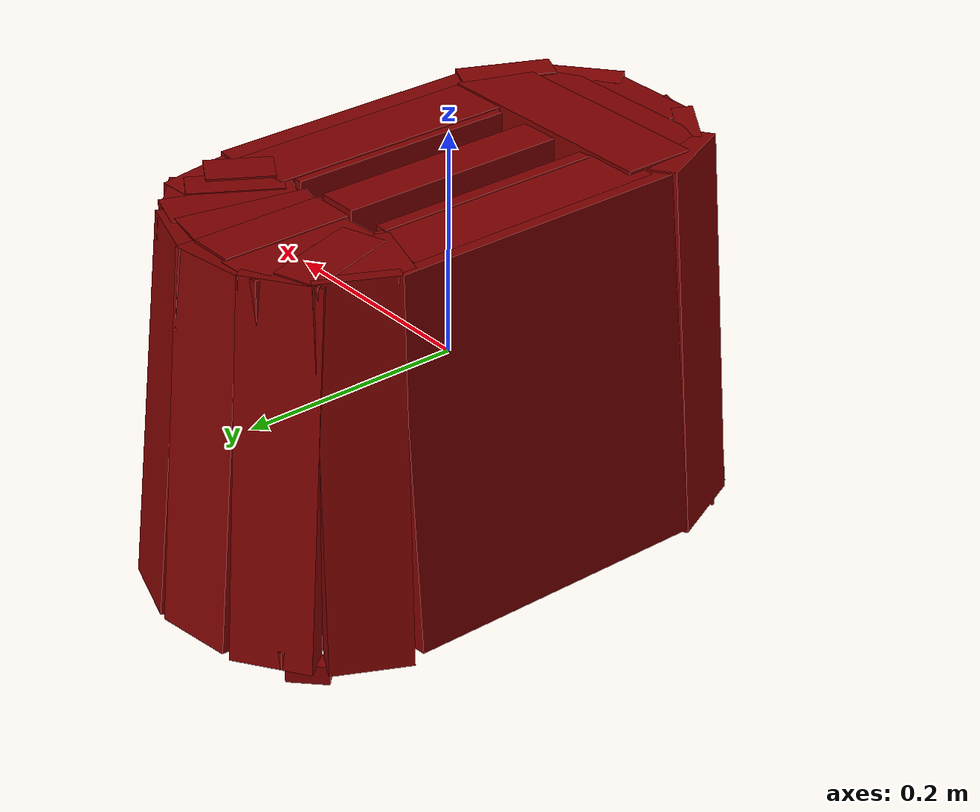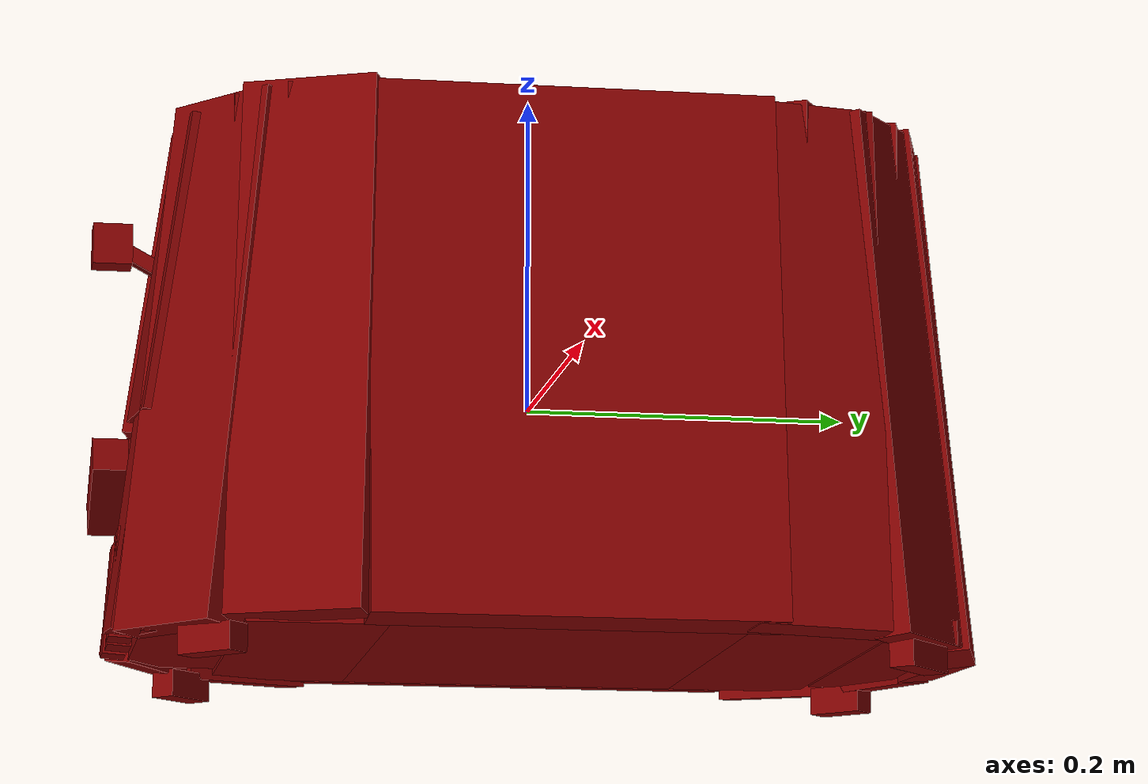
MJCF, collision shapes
<?xml version='1.0' encoding='UTF-8'?>
<mujoco model="model">
  <option timestep="0.002" gravity="0.0 0.0 -9.81"/>
  <compiler angle="radian"/>
  <asset>
    <mesh file="visuals/button_cancel.obj" name="button_cancel_vis"/>
    <mesh file="visuals/knob_doneness.obj" name="knob_doneness_vis"/>
    <mesh file="visuals/lever.obj" name="lever_vis"/>
    <mesh file="visuals/Body001.obj" name="Body001_vis"/>
    <texture file="visuals/T_BC001.png" name="Body001_material" type="2d"/>
    <material name="Body001_material" rgba="1 1 1 1.0" texture="Body001_material" shininess="0.141421377658844" specular="0.3103448502657381"/>
    <texture file="visuals/T_BC001.png" name="button_cancel_material" type="2d"/>
    <material name="button_cancel_material" rgba="1 1 1 1.0" texture="button_cancel_material" shininess="0.141421377658844" specular="0.3103448502657381"/>
    <texture file="visuals/T_BC001.png" name="knob_doneness_material" type="2d"/>
    <material name="knob_doneness_material" rgba="1 1 1 1.0" texture="knob_doneness_material" shininess="0.141421377658844" specular="0.3103448502657381"/>
    <texture file="visuals/T_BC001.png" name="lever_material" type="2d"/>
    <material name="lever_material" rgba="1 1 1 1.0" texture="lever_material" shininess="0.141421377658844" specular="0.3103448502657381"/>
  </asset>
  <default>
    <default class="visual">
      <geom conaffinity="0" contype="0" group="1" type="mesh"/>
    </default>
    <default class="collision">
      <geom group="0" rgba="0.5 0 0 0.5" density="1.0" solref="0.004 1" solimp="0.998 0.998 0.001"/>
    </default>
    <default class="spawn">
      <geom group="0" rgba="1 1 1 0.5" contype="0" conaffinity="0"/>
      <site group="0" rgba="1 1 1 0.5"/>
    </default>
    <default class="region">
      <geom group="1" conaffinity="0" contype="0" rgba="0 1 0 0" mass="0"/>
    </default>
  </default>
  <worldbody>
    <body>
      <body name="object">
        <geom mesh="Body001_vis" type="mesh" solimp="0.998 0.998 0.001" solref="0.001 1" friction="0.95 0.3 0.1" class="visual" material="Body001_material"/>
        <geom type="box" pos="-0.12839209 0.00789733 0.00909332" size="0.14144612848758698 0.01274540089070797 0.16335052251815796" quat="0.7064355611801147 -0.030804580077528954 0.030804496258497238 -0.7064353823661804" class="collision"/>
        <geom type="box" pos="0.12582500 0.00789736 0.00957425" size="0.12422096729278564 0.015895145013928413 0.1643896996974945" quat="0.7064338326454163 0.03084356151521206 -0.03084355592727661 -0.7064337134361267" class="collision"/>
        <geom type="box" pos="0.00011970 0.00789735 0.08630466" size="0.01845981739461422 0.10339897125959396 0.08628589659929276" quat="1.0 0.0 0.0 0.0" class="collision"/>
        <geom type="box" pos="-0.00052364 0.00635268 -0.14747350" size="0.12363019585609436 0.10683106631040573 0.007478775456547737" quat="1.0 0.0 0.0 0.0" class="collision"/>
        <geom type="box" pos="-0.05589509 0.00789734 0.08655936" size="0.005722363479435444 0.10339897871017456 0.0865406021475792" quat="1.0 0.0 0.0 0.0" class="collision"/>
        <geom type="box" pos="0.05375786 0.00789736 0.08591124" size="0.005722363479435444 0.10339897871017456 0.08589247614145279" quat="1.0 0.0 0.0 0.0" class="collision"/>
        <geom type="box" pos="0.08441834 0.00492108 0.14748457" size="0.029066720977425575 0.1197349950671196 0.025846406817436218" quat="1.0 0.0 0.0 0.0" class="collision"/>
        <geom type="box" pos="-0.00052361 -0.14244482 -0.14747350" size="0.1236310824751854 0.04326910525560379 0.007478646468371153" quat="1.0 0.0 0.0 0.0" class="collision"/>
        <geom type="box" pos="-0.00052367 0.15569738 -0.14747350" size="0.12363123893737793 0.04326910525560379 0.007478662300854921" quat="1.0 0.0 0.0 0.0" class="collision"/>
        <geom type="box" pos="-0.00052368 0.22390929 -0.14747350" size="0.09864763170480728 0.023213988170027733 0.007478990592062473" quat="1.0 0.0 0.0 0.0" class="collision"/>
        <geom type="box" pos="-0.00052359 -0.21499221 -0.14747350" size="0.07698934525251389 0.027825381606817245 0.0074788425117731094" quat="1.0 0.0 0.0 0.0" class="collision"/>
        <geom type="box" pos="-0.00159198 0.00940109 0.00482604" size="0.059575051069259644 0.1183314248919487 0.0005297267343848944" quat="1.0 0.0 0.0 0.0" class="collision"/>
        <geom type="box" pos="0.12333384 0.15298110 0.00795435" size="0.04173025116324425 0.011884286068379879 0.16376978158950806" quat="0.7600297927856445 0.028310716152191162 -0.03318355977535248 -0.6484227180480957" class="collision"/>
        <geom type="box" pos="0.09811267 0.21028277 0.00674540" size="0.03452734649181366 0.011884287931025028 0.1636912077665329" quat="0.9342952370643616 0.040630511939525604 -0.019244840368628502 -0.35365405678749084" class="collision"/>
        <geom type="box" pos="0.04697333 0.24245347 0.00687522" size="0.03452734649181366 0.011884287931025028 0.16505186259746552" quat="0.9861531853675842 0.04596418887376785 -0.010331111960113049 -0.15900461375713348" class="collision"/>
        <geom type="box" pos="-0.01588949 0.24893260 0.00729002" size="0.03452735021710396 0.011884287931025028 0.16470132768154144" quat="0.9965984225273132 0.04677310585975647 0.0004663928702939302 0.06784994900226593" class="collision"/>
        <geom type="box" pos="-0.07701792 0.22706197 0.00689822" size="0.03452734649181366 0.011884286068379879 0.16534389555454254" quat="0.9517301321029663 0.05032274127006531 0.006126889027655125 0.30272069573402405" class="collision"/>
        <geom type="box" pos="-0.11767361 0.17865041 0.00720534" size="0.03452734649181366 0.011884287931025028 0.16637316346168518" quat="0.8476083874702454 0.04295797646045685 0.026764579117298126 0.5282028913497925" class="collision"/>
        <geom type="box" pos="0.11917782 -0.15170936 0.01133909" size="0.04173024743795395 0.011884286068379879 0.16509374976158142" quat="0.5522377490997314 0.029308753088116646 -0.037714868783950806 -0.8323172926902771" class="collision"/>
        <geom type="box" pos="0.07809885 -0.20889115 0.00890918" size="0.04173025116324425 0.010432533919811249 0.16503295302391052" quat="0.3188709020614624 0.011297330260276794 -0.05592277646064758 -0.9460794925689697" class="collision"/>
        <geom type="box" pos="-0.07508872 -0.21264949 0.00829758" size="0.034751467406749725 0.009053592570126057 0.16551105678081512" quat="0.30279412865638733 0.0040574343875050545 0.053809989243745804 0.9515270590782166" class="collision"/>
        <geom type="box" pos="-0.11484302 -0.16354251 0.00808155" size="0.04173025116324425 0.011884286068379879 0.16576552391052246" quat="0.537534773349762 0.027018805965781212 0.03096226043999195 0.8422396779060364" class="collision"/>
        <geom type="box" pos="-0.02375131 -0.25128478 -0.12305498" size="0.01302685122936964 0.007193822413682938 0.033476803451776505" quat="0.999358594417572 -0.03437207639217377 0.010040899738669395 -0.00034534247242845595" class="collision"/>
        <geom type="box" pos="0.03623589 -0.22781441 0.07465361" size="0.025410937145352364 0.005940437316894531 0.09384605288505554" quat="0.9952822923660278 -0.07028617709875107 0.004711255431175232 0.06671416014432907" class="collision"/>
        <geom type="box" pos="-0.03526556 -0.22593828 0.07551196" size="0.025410933420062065 0.005940437316894531 0.09635770320892334" quat="0.9888200759887695 -0.069829560816288 -0.009281068108975887 -0.13142527639865875" class="collision"/>
        <geom type="box" pos="-0.04518352 -0.24568242 -0.08653834" size="0.010348370298743248 0.00594043405726552 0.06792284548282623" quat="0.9895538091659546 -0.05383039265871048 0.012083004228770733 -0.13318996131420135" class="collision"/>
        <geom type="box" pos="0.04543179 -0.24779661 -0.08608830" size="0.010348370298743248 0.005940435919910669 0.06673044711351395" quat="0.994620144367218 -0.06181461736559868 -0.013686208054423332 0.08199001103639603" class="collision"/>
        <geom type="box" pos="-0.00405861 0.17586805 0.14745433" size="0.020532969385385513 0.0576057992875576 0.025816163048148155" quat="1.0 0.0 0.0 0.0" class="collision"/>
        <geom type="box" pos="-0.08600640 0.00492108 0.14678000" size="0.029067037627100945 0.11973679810762405 0.025141829624772072" quat="1.0 0.0 0.0 0.0" class="collision"/>
        <geom type="box" pos="0.02580316 0.17463064 0.14701626" size="0.020533081144094467 0.05546017736196518 0.025378085672855377" quat="0.99519282579422 0.0 -0.0 -0.09793465584516525" class="collision"/>
        <geom type="box" pos="0.05440508 0.17284821 0.14690260" size="0.020533081144094467 0.05365860462188721 0.025264432653784752" quat="0.985664427280426 0.0 -0.0 -0.16871750354766846" class="collision"/>
        <geom type="box" pos="0.07746127 0.15380196 0.14736543" size="0.015054473653435707 0.03940611332654953 0.025727270171046257" quat="0.9634147882461548 0.0 -0.0 -0.2680148482322693" class="collision"/>
        <geom type="box" pos="0.09362758 0.13767712 0.14818598" size="0.017706094309687614 0.02816912531852722 0.026547815650701523" quat="0.9634147882461548 0.0 -0.0 -0.2680148482322693" class="collision"/>
        <geom type="box" pos="-0.04166391 0.17837507 0.14681840" size="0.020533081144094467 0.0576057992875576 0.025180231779813766" quat="0.9997580647468567 0.0 0.0 0.021995650604367256" class="collision"/>
        <geom type="box" pos="-0.06914723 0.16909322 0.14736542" size="0.020533081144094467 0.04429369792342186 0.025727255269885063" quat="0.9881181120872498 0.0 0.0 0.15369655191898346" class="collision"/>
        <geom type="box" pos="-0.08559208 0.14887503 0.14709192" size="0.030398856848478317 0.032412976026535034 0.025453763082623482" quat="0.8110179305076599 0.0 0.0 0.5850213170051575" class="collision"/>
        <geom type="box" pos="0.00281777 -0.13142104 0.14825095" size="0.10841242223978043 0.03248751536011696 0.026612786576151848" quat="1.0 0.0 0.0 0.0" class="collision"/>
        <geom type="box" pos="-0.00035795 -0.20149824 0.14689374" size="0.047777652740478516 0.02039469964802265 0.02525557205080986" quat="1.0 0.0 0.0 0.0" class="collision"/>
        <geom type="box" pos="-0.00302598 -0.17204057 0.14708586" size="0.09098364412784576 0.021839411929249763 0.025447696447372437" quat="1.0 0.0 0.0 0.0" class="collision"/>
        <geom type="box" pos="0.03048181 -0.25077319 -0.12084855" size="0.01302685122936964 0.007193822413682938 0.033476803451776505" quat="0.9994068145751953 -0.034373484551906586 0.0021147695370018482 -7.273506344063208e-05" class="collision"/>
        <geom type="box" pos="0.00329789 -0.25077435 -0.13591110" size="0.013768055476248264 0.007193821016699076 0.019472084939479828" quat="0.9994068145751953 -0.034373484551906586 0.0021147695370018482 -7.273506344063208e-05" class="collision"/>
        <geom type="box" pos="-0.10197954 -0.20589033 -0.16333322" size="0.00821390375494957 0.0178651325404644 0.008573487401008606" quat="0.9225467443466187 0.0 0.0 0.38588541746139526" class="collision"/>
        <geom type="box" pos="0.10498157 -0.20311105 -0.16333322" size="0.008213902823626995 0.019728634506464005 0.008573487401008606" quat="0.9253305792808533 0.0 -0.0 -0.37916135787963867" class="collision"/>
        <geom type="box" pos="-0.10261019 0.22309904 -0.16333322" size="0.00821390375494957 0.0178651325404644 0.008573487401008606" quat="0.9230363965034485 0.0 -0.0 -0.38471266627311707" class="collision"/>
        <geom type="box" pos="0.10355650 0.22131294 -0.16333322" size="0.008213902823626995 0.02138938196003437 0.008573487401008606" quat="0.39746493101119995 0.0 -0.0 -0.9176173806190491" class="collision"/>
        <body name="button_cancel">
          <joint axis="0.0 1.0 0.0" pos="0.00378405 -0.25243592 -0.10674371" limited="true" name="button_cancel_joint" range="0.0 0.003" type="slide" damping="1" frictionloss="1" armature=".01" stiffness="0.05"/>
          <geom mesh="button_cancel_vis" type="mesh" solimp="0.998 0.998 0.001" solref="0.001 1" friction="0.95 0.3 0.1" class="visual" material="button_cancel_material"/>
          <geom class="collision" type="box" pos="0.00377033 -0.25328869 -0.10690443" size="0.011674778535962105 0.0019006102811545134 0.0063023255206644535" quat="1.0 0.0 0.0 0.0" name="button_cancel_main"/>
        </body>
        <body name="knob_doneness">
          <joint axis="0.0 1.0 0.0" pos="0.00076377 -0.25170308 -0.05679606" limited="true" name="knob_doneness_joint" range="0.0 4.153883619746504" type="hinge" damping="0.05" frictionloss="0.1" armature="0.001"/>
          <geom mesh="knob_doneness_vis" type="mesh" solimp="0.998 0.998 0.001" solref="0.001 1" friction="0.95 0.3 0.1" class="visual" material="knob_doneness_material"/>
          <geom type="cylinder" pos="0.00081063 -0.24853866 -0.05675789" size="0.030964963138103485 0.0012452210066840053" quat="0.5000000596046448 -0.5 -0.5 -0.4999999701976776" class="collision" density="0.001"/>
          <geom class="collision" type="box" pos="0.00059257 -0.26034275 -0.05596535" size="0.029718758538365364 0.010985721834003925 0.012968876399099827" quat="0.9604214429855347 0.0 -0.27855104207992554 0.0" name="knob_doneness_main" density="0.001"/>
        </body>
        <body name="lever">
          <joint axis="0.0 0.0 -1.0" pos="0.00063864 -0.24778864 0.09120349" limited="true" name="lever_joint" range="0.0 0.059000000000000004" type="slide" damping="1" frictionloss="1" armature=".01" stiffness="2" springref="-0.5"/>
          <geom class="region" name="reg_slotL" type="box" pos="-0.033291305 0.008216085000000005 0.171873925" size="0.014160714999999997 0.102178625 0.085999925"/>
          <geom class="region" name="reg_slotR" type="box" pos="0.033364695 0.008216085000000005 0.171873885" size="0.014352145 0.102178625 0.085999965"/>
          <geom mesh="lever_vis" type="mesh" solimp="0.998 0.998 0.001" solref="0.001 1" friction="0.95 0.3 0.1" class="visual" material="lever_material"/>
          <geom class="collision" type="box" pos="0.00092636 -0.26105016 0.09535336" size="0.01020729262381792 0.012192522175610065 0.012658373452723026" quat="1.0 0.0 0.0 0.0" name="lever_handle"/>
          <geom type="box" pos="0.00092636 -0.24065492 0.08604252" size="0.004578250925987959 0.004855124745517969 0.014432530850172043" quat="0.6074435114860535 0.36195623874664307 0.3619561195373535 -0.6074436902999878" class="collision"/>
          <geom class="collision" type="box" pos="0.03391259 0.00789735 0.09637880" size="0.012546599842607975 0.09999998658895493 0.00031480786856263876" quat="1.0 0.0 0.0 0.0" name="slotR_floor"/>
          <geom class="collision" type="box" pos="-0.03356905 0.00789734 0.09637880" size="0.01254673395305872 0.09999999403953552 0.00031480786856263876" quat="1.0 0.0 0.0 0.0" name="slotL_floor"/>
        </body>
        <geom class="region" name="reg_main" type="box" pos="0.0 0.008688299999999982 -2.7749999999965302e-06" size="0.15223123 0.26594676 0.17285908500000002"/>
      </body>
    </body>
  </worldbody>
  <actuator>
    <motor name="button_cancel_joint_actuator" joint="button_cancel_joint" gear="0.5"/>
    <motor name="knob_doneness_joint_actuator" joint="knob_doneness_joint" gear="0.5"/>
    <motor name="lever_joint_actuator" joint="lever_joint" gear="0.5"/>
  </actuator>
</mujoco>
